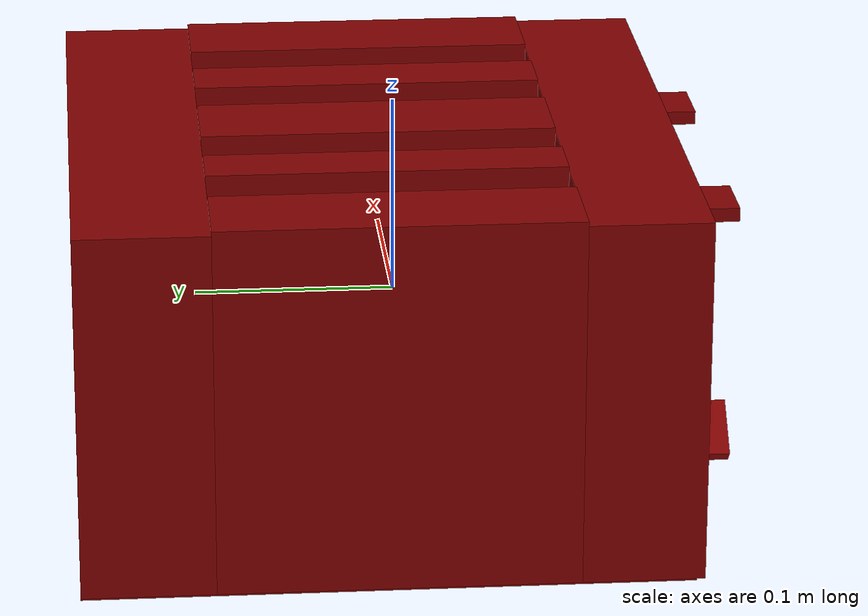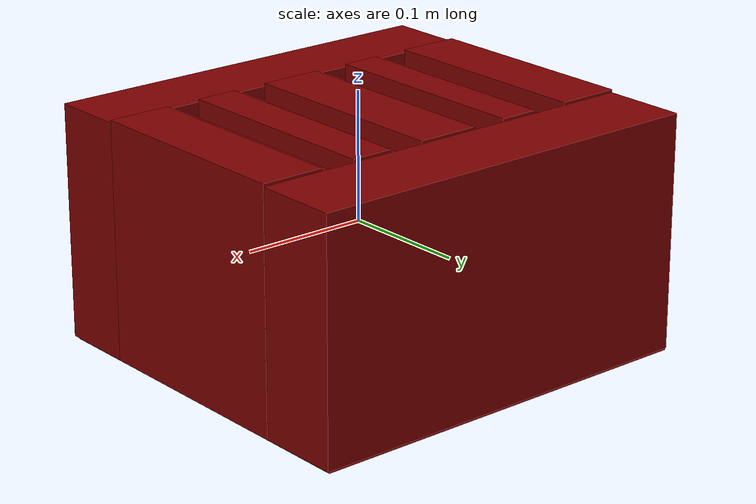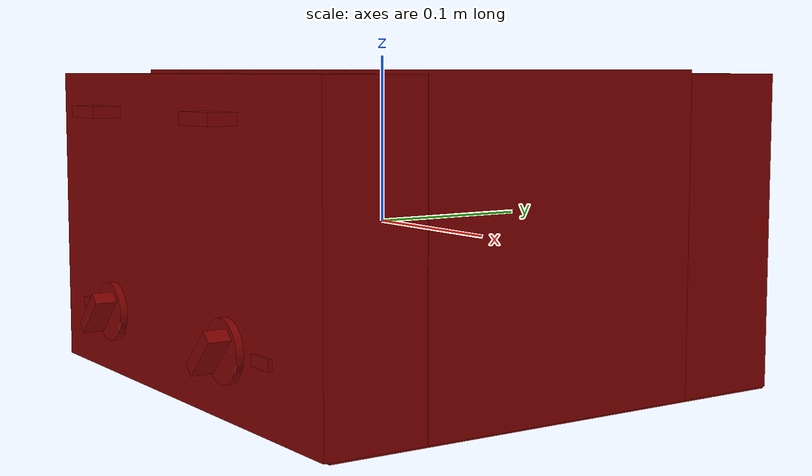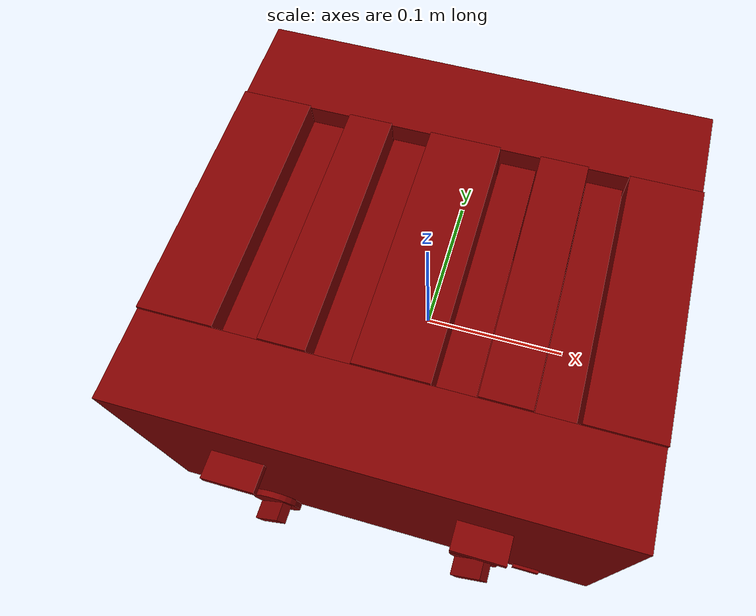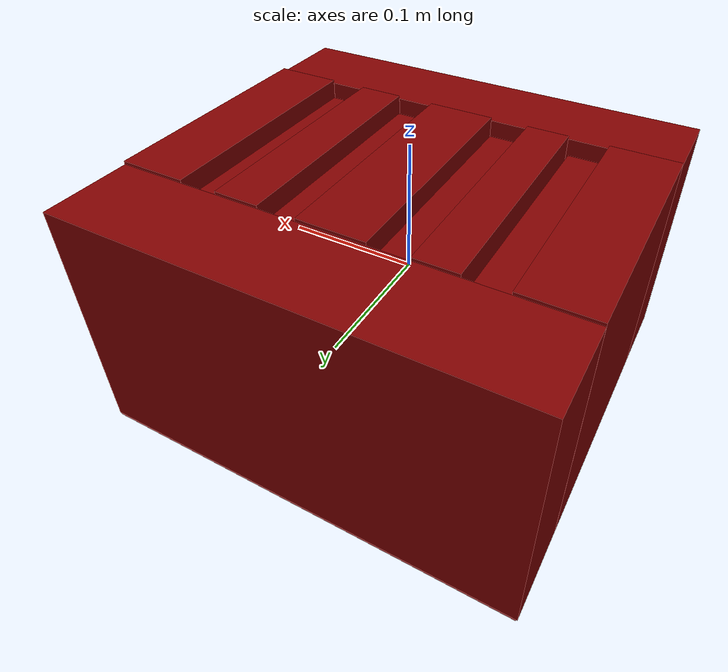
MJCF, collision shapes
<?xml version='1.0' encoding='UTF-8'?>
<mujoco model="model">
  <compiler angle="radian"/>
  <asset>
    <mesh file="visuals/Body001.obj" name="Body001_vis"/>
    <mesh file="visuals/Button001.obj" name="Button001_vis"/>
    <mesh file="visuals/Button002.obj" name="Button002_vis"/>
    <mesh file="visuals/Knob001.obj" name="Knob001_vis"/>
    <mesh file="visuals/Knob002.obj" name="Knob002_vis"/>
    <mesh file="visuals/Lever001.obj" name="Lever001_vis"/>
    <mesh file="visuals/Lever002.obj" name="Lever002_vis"/>
    <texture file="visuals/T_BC001.png" name="Body001_material" type="2d"/>
    <material name="Body001_material" rgba="1 1 1 1.0" texture="Body001_material" shininess="0.1" specular="4"/>
    <texture file="visuals/T_BC001.png" name="Button001_material" type="2d"/>
    <material name="Button001_material" rgba="1 1 1 1.0" texture="Button001_material" shininess="0.2512328028678894" specular="0.3103448502657381"/>
    <texture file="visuals/T_BC001.png" name="Button002_material" type="2d"/>
    <material name="Button002_material" rgba="1 1 1 1.0" texture="Button002_material" shininess="0.2512328028678894" specular="0.3103448502657381"/>
    <texture file="visuals/T_BC001.png" name="Button003_material" type="2d"/>
    <material name="Button003_material" rgba="1 1 1 1.0" texture="Button003_material" shininess="0.2512328028678894" specular="0.3103448502657381"/>
    <texture file="visuals/T_BC001.png" name="Button004_material" type="2d"/>
    <material name="Button004_material" rgba="1 1 1 1.0" texture="Button004_material" shininess="0.2512328028678894" specular="0.3103448502657381"/>
    <texture file="visuals/T_BC001.png" name="Button005_material" type="2d"/>
    <material name="Button005_material" rgba="1 1 1 1.0" texture="Button005_material" shininess="0.2512328028678894" specular="0.3103448502657381"/>
    <texture file="visuals/T_BC001.png" name="Button006_material" type="2d"/>
    <material name="Button006_material" rgba="1 1 1 1.0" texture="Button006_material" shininess="0.2512328028678894" specular="0.3103448502657381"/>
    <texture file="visuals/T_BC001.png" name="Knob001_material" type="2d"/>
    <material name="Knob001_material" rgba="1 1 1 1.0" texture="Knob001_material" shininess="0.2512328028678894" specular="0.3103448502657381"/>
    <texture file="visuals/T_BC001.png" name="Knob002_material" type="2d"/>
    <material name="Knob002_material" rgba="1 1 1 1.0" texture="Knob002_material" shininess="0.2512328028678894" specular="0.3103448502657381"/>
    <texture file="visuals/T_BC001.png" name="Lever001_material" type="2d"/>
    <material name="Lever001_material" rgba="1 1 1 1.0" texture="Lever001_material" shininess="0.2512328028678894" specular="0.3103448502657381"/>
    <texture file="visuals/T_BC001.png" name="Lever002_material" type="2d"/>
    <material name="Lever002_material" rgba="1 1 1 1.0" texture="Lever002_material" shininess="0.2512328028678894" specular="0.3103448502657381"/>
  </asset>
  <default>
    <default class="visual">
      <geom conaffinity="0" contype="0" group="1" type="mesh"/>
    </default>
    <default class="collision">
      <geom group="0" rgba="0.5 0 0 0.5"/>
    </default>
    <default class="spawn">
      <geom group="0" rgba="1 1 1 0.5" contype="0" conaffinity="0"/>
      <site group="0" rgba="1 1 1 0.5"/>
    </default>
    <default class="region">
      <geom group="1" conaffinity="0" contype="0" rgba="0 1 0 0"/>
    </default>
  </default>
  <worldbody>
    <body>
      <body name="object">
        <geom mesh="Body001_vis" type="mesh" solimp="0.998 0.998 0.001" solref="0.001 1" density="100" friction="0.95 0.3 0.1" class="visual" material="Body001_material"/>
        <geom class="collision" type="box" pos="0.0 0.12954513728618622 -0.001760595478117466" size="0.16120412945747375 0.032508280128240585 0.09113747626543045" quat="1.0 0.0 0.0 0.0"/>
        <geom class="collision" type="box" pos="2.5233518385903153e-07 -0.1087249144911766 -0.0017605951288715005" size="0.16120415925979614 0.02977992780506611 0.09113747626543045" quat="1.0 0.0 0.0 0.0"/>
        <geom class="collision" type="box" pos="0.13703948259353638 0.009045934304594994 -0.0006304280832409859" size="0.02458072640001774 0.08799093216657639 0.09226764738559723" quat="1.0 0.0 0.0 0.0"/>
        <geom class="collision" type="box" pos="-0.13672129809856415 0.009045934304594994 -0.0006304280832409859" size="0.024515647441148758 0.08799093216657639 0.09226764738559723" quat="1.0 0.0 0.0 0.0"/>
        <geom class="collision" type="box" pos="-0.06804697960615158 0.009045934304594994 -0.0006304280832409859" size="0.015207222662866116 0.08799093216657639 0.09226764738559723" quat="1.0 0.0 0.0 0.0"/>
        <geom class="collision" type="box" pos="-0.00029077345971018076 0.009045934304594994 -0.0006304280832409859" size="0.02451360411942005 0.08799093216657639 0.09226764738559723" quat="1.0 0.0 0.0 0.0"/>
        <geom class="collision" type="box" pos="0.06841133534908295 0.009045934304594994 -0.0006304280832409859" size="0.016349172219634056 0.08799093216657639 0.09226764738559723" quat="1.0 0.0 0.0 0.0"/>
        <geom class="collision" type="box" pos="-5.1656894356710836e-05 0.013782797381281853 -0.07307730615139008" size="0.16011695563793182 0.14826957881450653 0.021154657006263733" quat="1.0 0.0 0.0 0.0"/>
        <body name="Button001">
          <joint axis="0.0 1.0 0.0" pos="-0.11191833019256592 -0.14292390644550323 -0.05240114778280258" limited="true" name="Button001_joint" range="0.0 0.0015" type="slide" damping="1" frictionloss="1" armature=".01" stiffness="0.05"/>
          <geom mesh="Button001_vis" type="mesh" solimp="0.998 0.998 0.001" solref="0.001 1" density="100" friction="0.95 0.3 0.1" class="visual" material="Button001_material"/>
          <geom class="collision" type="box" pos="-0.110712431371212 -0.14412982761859894 -0.052431561052799225" size="0.009225420653820038 0.0010840313043445349 0.003126217983663082" quat="1.0 0.0 0.0 0.0"/>
        </body>
        <body name="Button002">
          <joint axis="0.0 1.0 0.0" pos="0.11191649734973907 -0.14292390644550323 -0.05240114778280258" limited="true" name="Button002_joint" range="0.0 0.0015" type="slide" damping="1" frictionloss="1" armature=".01" stiffness="0.05"/>
          <geom mesh="Button002_vis" type="mesh" solimp="0.998 0.998 0.001" solref="0.001 1" density="100" friction="0.95 0.3 0.1" class="visual" material="Button002_material"/>
          <geom class="collision" type="box" pos="0.11097580939531326 -0.14412982761859894 -0.052431561052799225" size="0.009225402027368546 0.0010840289760380983 0.003126213327050209" quat="1.0 0.0 0.0 0.0"/>
        </body>
        <body name="Knob001">
          <joint axis="0.0 1.0 0.0" pos="-0.07383696734905243 -0.158673956990242 -0.052401117980480194" limited="true" name="Knob001_joint" range="0.0 4.71238898038469" type="hinge" damping="0.05" armature="0.001" springref="-0.1"/>
          <geom mesh="Knob001_vis" type="mesh" solimp="0.998 0.998 0.001" solref="0.001 1" density="100" friction="0.95 0.3 0.1" class="visual" material="Knob001_material"/>
          <geom class="collision" type="cylinder" pos="-0.07376560568809509 -0.14562013745307922 -0.052492547780275345" size="0.01760781556367874 0.0021463397424668074" quat="0.7071067094802856 0.7071068286895752 0.0 0.0"/>
          <geom class="collision" type="box" pos="-0.07395573705434799 -0.15452656149864197 -0.0525333434343338" size="0.0037910686805844307 0.0065341489389538765 0.014511547051370144" quat="0.9238795042037964 0.0 0.3826834559440613 0.0"/>
        </body>
        <body name="Knob002">
          <joint axis="0.0 1.0 0.0" pos="0.07384221255779266 -0.158673956990242 -0.052401117980480194" limited="true" name="Knob002_joint" range="0.0 4.71238898038469" type="hinge" damping="0.05" armature="0.001" springref="-0.1"/>
          <geom mesh="Knob002_vis" type="mesh" solimp="0.998 0.998 0.001" solref="0.001 1" density="100" friction="0.95 0.3 0.1" class="visual" material="Knob002_material"/>
          <geom class="collision" type="cylinder" pos="0.07394009828567505 -0.1456621289253235 -0.052478279918432236" size="0.017496353015303612 0.0021372835617512465" quat="0.7071067094802856 0.7071068286895752 0.0 0.0"/>
          <geom class="collision" type="box" pos="0.07369235903024673 -0.15452656149864197 -0.05235955864191055" size="0.0037910686805844307 0.0065341489389538765 0.014511547051370144" quat="0.9238795042037964 0.0 0.3826834559440613 0.0"/>
        </body>
        <body name="Lever001">
          <joint axis="0.0 0.0 -1.0" pos="-0.07383695989847183 -0.1495809257030487 0.06966348737478256" limited="true" name="Lever001_joint" range="0.0 0.085" type="slide" damping="1" frictionloss="-0.1" armature=".01" stiffness="1" springref="-0.5"/>
          <geom mesh="Lever001_vis" type="mesh" solimp="0.998 0.998 0.001" solref="0.001 1" density="100" friction="0.95 0.3 0.1" class="visual" material="Lever001_material"/>
          <geom class="collision" type="box" pos="-0.07385630160570145 -0.15332935750484467 0.06709282845258713" size="0.016325006261467934 0.008430159650743008 0.0034253934863954782" quat="1.0 0.0 0.0 0.0" name="sideL_lever_knob"/>
          <geom class="collision" type="box" pos="-0.03860316053032875 0.009057892486453056 0.07676006108522415" size="0.01249999925494194 0.08546552807092667 0.0013593488838523626" quat="1.0 0.0 0.0 0.0" name="sideL_slotR_floor"/>
          <geom class="collision" type="box" pos="-0.09810683131217957 0.009057892486453056 0.07676006108522415" size="0.01249999925494194 0.08546552807092667 0.0013593488838523626" quat="1.0 0.0 0.0 0.0" name="sideL_slotL_floor"/>
        </body>
        <body name="Lever002">
          <joint axis="0.0 0.0 -1.0" pos="0.07383695244789124 -0.1495809257030487 0.06966348737478256" limited="true" name="Lever002_joint" range="0.0 0.085" type="slide" damping="1" frictionloss="-0.1" armature=".01" stiffness="1" springref="-0.5"/>
          <geom mesh="Lever002_vis" type="mesh" solimp="0.998 0.998 0.001" solref="0.001 1" density="100" friction="0.95 0.3 0.1" class="visual" material="Lever002_material"/>
          <geom class="collision" type="box" pos="0.07390525192022324 -0.15332935750484467 0.06709282845258713" size="0.016324982047080994 0.008430147543549538 0.0034253906924277544" quat="1.0 0.0 0.0 0.0" name="sideR_lever_knob"/>
          <geom class="collision" type="box" pos="0.09858889132738113 0.009057892486453056 0.07676006108522415" size="0.01249999925494194 0.08546552807092667 0.0013593488838523626" quat="1.0 0.0 0.0 0.0" name="sideR_slotR_floor"/>
          <geom class="collision" type="box" pos="0.03848715126514435 0.009057892486453056 0.07676006108522415" size="0.012500000186264515 0.08546548336744308 0.0013593474868685007" quat="1.0 0.0 0.0 0.0" name="sideR_slotL_floor"/>
        </body>
        <geom class="region" name="reg_main" type="box" pos="3.725290298461914e-09 0.009046092629432678 0.0" size="0.16120414435863495 0.15300731360912323 0.09423209726810455"/>
      </body>
    </body>
  </worldbody>
  <actuator>
    <motor name="Button001_joint_actuator" joint="Button001_joint" gear="0.5"/>
    <motor name="Button002_joint_actuator" joint="Button002_joint" gear="0.5"/>
    <motor name="Knob001_joint_actuator" joint="Knob001_joint" gear="5"/>
    <motor name="Knob002_joint_actuator" joint="Knob002_joint" gear="5"/>
    <motor name="Lever001_joint_actuator" joint="Lever001_joint" gear="2"/>
    <motor name="Lever002_joint_actuator" joint="Lever002_joint" gear="2"/>
  </actuator>
</mujoco>
